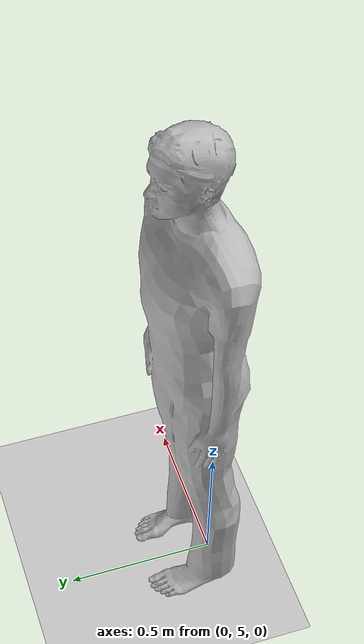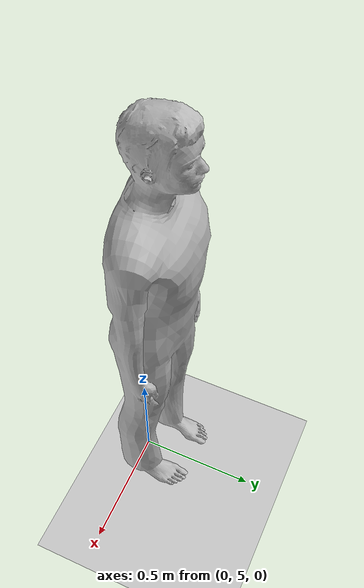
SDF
<?xml version="1.0" ?>
<sdf version="1.5">
	<world name="default">

		<include>
			<uri>model://person</uri>
			<pose>0 5 0 0 0 3.14</pose>
		</include>

		<include>
			<uri>model://sun</uri>
		</include>

		<include>
			<uri>model://ground_plane</uri>
		</include>

		<!-- Gazebo required specifications -->
		<physics name='default_physics' default='0' type='ode'>
			<gravity>0 0 -9.8066</gravity>
			<ode>
				<solver>
					<type>quick</type>
					<iters>10</iters>
					<sor>1.3</sor>
					<use_dynamic_moi_rescaling>0</use_dynamic_moi_rescaling>
				</solver>
				<constraints>
					<cfm>0</cfm>
					<erp>0.2</erp>
					<contact_max_correcting_vel>100</contact_max_correcting_vel>
					<contact_surface_layer>0.001</contact_surface_layer>
				</constraints>
			</ode>
			<max_step_size>0.004</max_step_size>
			<real_time_factor>1</real_time_factor>
			<real_time_update_rate>250</real_time_update_rate>
			<magnetic_field>6.0e-6 2.3e-5 -4.2e-5</magnetic_field>
		</physics>

	</world>
</sdf>

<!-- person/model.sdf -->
<sdf version="1.5">
  <model name="person">
    <link name="link">
      <inertial>
        <pose>0 -0.1 0.95 0 0 0</pose>
        <mass>80.0</mass>
        <inertia>
          <ixx>24.88</ixx>
          <ixy>0</ixy>
          <ixz>0</ixz>
          <iyy>25.73</iyy>
          <iyz>0</iyz>
          <izz>2.48</izz>
        </inertia>
      </inertial>

      <collision name="bottom">
        <pose>0 -0.1 0.01 0 0 0</pose>
        <geometry>
          <box>
            <size>0.5 0.35 0.02</size>
          </box>
        </geometry>
      </collision>

      <collision name="person">
        <pose>0 0 0.02 0.04 0 0</pose>
        <geometry>
          <mesh>
            <uri>model://person/meshes/standing.dae</uri>
          </mesh>
        </geometry>
      </collision>

      <visual name="visual">
        <pose>0 0 0.02 0.04 0 0</pose>
        <geometry>
          <mesh>
            <uri>model://person/meshes/standing.dae</uri>
          </mesh>
        </geometry>
      </visual>
    </link>
    <plugin name="personplugin" filename="libpersonplugin.so"/>

    <gazebo>
      <static>true</static>
    </gazebo>
  </model>
</sdf>
